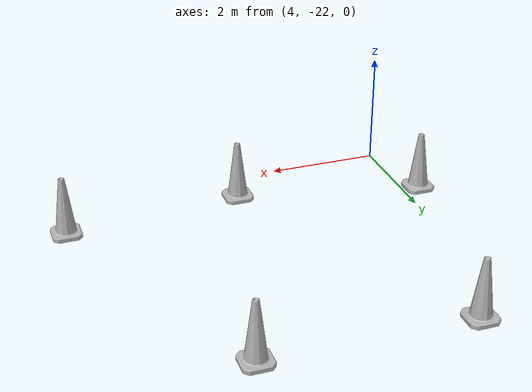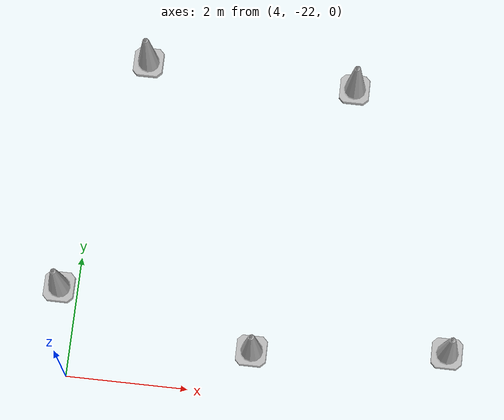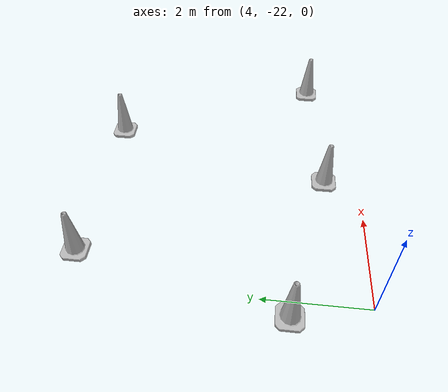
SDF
<sdf version="1.6">
 <model name="RaceTrack1">
  <link name="link_clone_38">
   <inertial>
    <inertia><ixx>1</ixx><ixy>0</ixy><ixz>0</ixz><iyy>1</iyy><iyz>0</iyz><izz>1</izz></inertia>
    <mass>1</mass>
   </inertial>
   <pose>10.1416 -20.9479 -9e-06 0 1e-06 0</pose>
   <visual name="visual">
    <geometry>
     <mesh><scale>10 10 10</scale><uri>model://construction_cone/meshes/construction_cone.dae</uri></mesh>
    </geometry>
    <material><shader type="vertex"><normal_map>__default__</normal_map></shader></material>
   </visual>
   <collision name="collision">
    <geometry>
     <mesh><uri>model://construction_cone/meshes/construction_cone.dae</uri><scale>10 10 10</scale></mesh>
    </geometry>
    <surface>
     <friction>
      <ode><mu>1</mu><mu2>1</mu2><fdir1>0 0 0</fdir1><slip1>0</slip1><slip2>0</slip2></ode>
      <torsional>
       <coefficient>1</coefficient>
       <patch_radius>0</patch_radius>
       <surface_radius>0</surface_radius>
       <use_patch_radius>1</use_patch_radius>
       <ode><slip>0</slip></ode>
      </torsional>
     </friction>
     <bounce><restitution_coefficient>0</restitution_coefficient><threshold>1e+06</threshold></bounce>
     <contact>
      <collide_without_contact>0</collide_without_contact>
      <collide_without_contact_bitmask>1</collide_without_contact_bitmask>
      <collide_bitmask>1</collide_bitmask>
      <ode>
       <soft_cfm>0</soft_cfm>
       <soft_erp>0.2</soft_erp>
       <kp>1e+13</kp>
       <kd>1</kd>
       <max_vel>0.01</max_vel>
       <min_depth>0</min_depth>
      </ode>
      <bullet>
       <split_impulse>1</split_impulse>
       <split_impulse_penetration_threshold>-0.01</split_impulse_penetration_threshold>
       <soft_cfm>0</soft_cfm>
       <soft_erp>0.2</soft_erp>
       <kp>1e+13</kp>
       <kd>1</kd>
      </bullet>
     </contact>
    </surface>
   </collision>
  </link>
  <link name="link_clone_39">
   <inertial>
    <inertia><ixx>1</ixx><ixy>0</ixy><ixz>0</ixz><iyy>1</iyy><iyz>0</iyz><izz>1</izz></inertia>
    <mass>1</mass>
   </inertial>
   <pose>8.20252 -16.5716 -8e-06 0 1e-06 0</pose>
   <visual name="visual">
    <geometry>
     <mesh><scale>10 10 10</scale><uri>model://construction_cone/meshes/construction_cone.dae</uri></mesh>
    </geometry>
    <material><shader type="vertex"><normal_map>__default__</normal_map></shader></material>
   </visual>
   <collision name="collision">
    <geometry>
     <mesh><uri>model://construction_cone/meshes/construction_cone.dae</uri><scale>10 10 10</scale></mesh>
    </geometry>
    <surface>
     <friction>
      <ode><mu>1</mu><mu2>1</mu2><fdir1>0 0 0</fdir1><slip1>0</slip1><slip2>0</slip2></ode>
      <torsional>
       <coefficient>1</coefficient>
       <patch_radius>0</patch_radius>
       <surface_radius>0</surface_radius>
       <use_patch_radius>1</use_patch_radius>
       <ode><slip>0</slip></ode>
      </torsional>
     </friction>
     <bounce><restitution_coefficient>0</restitution_coefficient><threshold>1e+06</threshold></bounce>
     <contact>
      <collide_without_contact>0</collide_without_contact>
      <collide_without_contact_bitmask>1</collide_without_contact_bitmask>
      <collide_bitmask>1</collide_bitmask>
      <ode>
       <soft_cfm>0</soft_cfm>
       <soft_erp>0.2</soft_erp>
       <kp>1e+13</kp>
       <kd>1</kd>
       <max_vel>0.01</max_vel>
       <min_depth>0</min_depth>
      </ode>
      <bullet>
       <split_impulse>1</split_impulse>
       <split_impulse_penetration_threshold>-0.01</split_impulse_penetration_threshold>
       <soft_cfm>0</soft_cfm>
       <soft_erp>0.2</soft_erp>
       <kp>1e+13</kp>
       <kd>1</kd>
      </bullet>
     </contact>
    </surface>
   </collision>
  </link>
  <link name="link_clone_40">
   <inertial>
    <inertia><ixx>1</ixx><ixy>0</ixy><ixz>0</ixz><iyy>1</iyy><iyz>0</iyz><izz>1</izz></inertia>
    <mass>1</mass>
   </inertial>
   <pose>4.66751 -16.4719 -6e-06 0 1e-06 0</pose>
   <visual name="visual">
    <geometry>
     <mesh><scale>10 10 10</scale><uri>model://construction_cone/meshes/construction_cone.dae</uri></mesh>
    </geometry>
    <material><shader type="vertex"><normal_map>__default__</normal_map></shader></material>
   </visual>
   <collision name="collision">
    <geometry>
     <mesh><uri>model://construction_cone/meshes/construction_cone.dae</uri><scale>10 10 10</scale></mesh>
    </geometry>
    <surface>
     <friction>
      <ode><mu>1</mu><mu2>1</mu2><fdir1>0 0 0</fdir1><slip1>0</slip1><slip2>0</slip2></ode>
      <torsional>
       <coefficient>1</coefficient>
       <patch_radius>0</patch_radius>
       <surface_radius>0</surface_radius>
       <use_patch_radius>1</use_patch_radius>
       <ode><slip>0</slip></ode>
      </torsional>
     </friction>
     <bounce><restitution_coefficient>0</restitution_coefficient><threshold>1e+06</threshold></bounce>
     <contact>
      <collide_without_contact>0</collide_without_contact>
      <collide_without_contact_bitmask>1</collide_without_contact_bitmask>
      <collide_bitmask>1</collide_bitmask>
      <ode>
       <soft_cfm>0</soft_cfm>
       <soft_erp>0.2</soft_erp>
       <kp>1e+13</kp>
       <kd>1</kd>
       <max_vel>0.01</max_vel>
       <min_depth>0</min_depth>
      </ode>
      <bullet>
       <split_impulse>1</split_impulse>
       <split_impulse_penetration_threshold>-0.01</split_impulse_penetration_threshold>
       <soft_cfm>0</soft_cfm>
       <soft_erp>0.2</soft_erp>
       <kp>1e+13</kp>
       <kd>1</kd>
      </bullet>
     </contact>
    </surface>
   </collision>
  </link>
  <link name="link_clone_41">
   <inertial>
    <inertia><ixx>1</ixx><ixy>0</ixy><ixz>0</ixz><iyy>1</iyy><iyz>0</iyz><izz>1</izz></inertia>
    <mass>1</mass>
   </inertial>
   <pose>6.96335 -21.2544 -8e-06 0 1e-06 0</pose>
   <visual name="visual">
    <geometry>
     <mesh><scale>10 10 10</scale><uri>model://construction_cone/meshes/construction_cone.dae</uri></mesh>
    </geometry>
    <material><shader type="vertex"><normal_map>__default__</normal_map></shader></material>
   </visual>
   <collision name="collision">
    <geometry>
     <mesh><uri>model://construction_cone/meshes/construction_cone.dae</uri><scale>10 10 10</scale></mesh>
    </geometry>
    <surface>
     <friction>
      <ode><mu>1</mu><mu2>1</mu2><fdir1>0 0 0</fdir1><slip1>0</slip1><slip2>0</slip2></ode>
      <torsional>
       <coefficient>1</coefficient>
       <patch_radius>0</patch_radius>
       <surface_radius>0</surface_radius>
       <use_patch_radius>1</use_patch_radius>
       <ode><slip>0</slip></ode>
      </torsional>
     </friction>
     <bounce><restitution_coefficient>0</restitution_coefficient><threshold>1e+06</threshold></bounce>
     <contact>
      <collide_without_contact>0</collide_without_contact>
      <collide_without_contact_bitmask>1</collide_without_contact_bitmask>
      <collide_bitmask>1</collide_bitmask>
      <ode>
       <soft_cfm>0</soft_cfm>
       <soft_erp>0.2</soft_erp>
       <kp>1e+13</kp>
       <kd>1</kd>
       <max_vel>0.01</max_vel>
       <min_depth>0</min_depth>
      </ode>
      <bullet>
       <split_impulse>1</split_impulse>
       <split_impulse_penetration_threshold>-0.01</split_impulse_penetration_threshold>
       <soft_cfm>0</soft_cfm>
       <soft_erp>0.2</soft_erp>
       <kp>1e+13</kp>
       <kd>1</kd>
      </bullet>
     </contact>
    </surface>
   </collision>
  </link>
  <link name="link_clone_42">
   <inertial>
    <inertia><ixx>1</ixx><ixy>0</ixy><ixz>0</ixz><iyy>1</iyy><iyz>0</iyz><izz>1</izz></inertia>
    <mass>1</mass>
   </inertial>
   <pose>3.69384 -20.5344 -6e-06 0 1e-06 0</pose>
   <visual name="visual">
    <geometry>
     <mesh><scale>10 10 10</scale><uri>model://construction_cone/meshes/construction_cone.dae</uri></mesh>
    </geometry>
    <material><shader type="vertex"><normal_map>__default__</normal_map></shader></material>
   </visual>
   <collision name="collision">
    <geometry>
     <mesh><uri>model://construction_cone/meshes/construction_cone.dae</uri><scale>10 10 10</scale></mesh>
    </geometry>
    <surface>
     <friction>
      <ode><mu>1</mu><mu2>1</mu2><fdir1>0 0 0</fdir1><slip1>0</slip1><slip2>0</slip2></ode>
      <torsional>
       <coefficient>1</coefficient>
       <patch_radius>0</patch_radius>
       <surface_radius>0</surface_radius>
       <use_patch_radius>1</use_patch_radius>
       <ode><slip>0</slip></ode>
      </torsional>
     </friction>
     <bounce><restitution_coefficient>0</restitution_coefficient><threshold>1e+06</threshold></bounce>
     <contact>
      <collide_without_contact>0</collide_without_contact>
      <collide_without_contact_bitmask>1</collide_without_contact_bitmask>
      <collide_bitmask>1</collide_bitmask>
      <ode>
       <soft_cfm>0</soft_cfm>
       <soft_erp>0.2</soft_erp>
       <kp>1e+13</kp>
       <kd>1</kd>
       <max_vel>0.01</max_vel>
       <min_depth>0</min_depth>
      </ode>
      <bullet>
       <split_impulse>1</split_impulse>
       <split_impulse_penetration_threshold>-0.01</split_impulse_penetration_threshold>
       <soft_cfm>0</soft_cfm>
       <soft_erp>0.2</soft_erp>
       <kp>1e+13</kp>
       <kd>1</kd>
      </bullet>
     </contact>
    </surface>
   </collision>
  </link>
  <static>1</static>
 </model>
</sdf>
